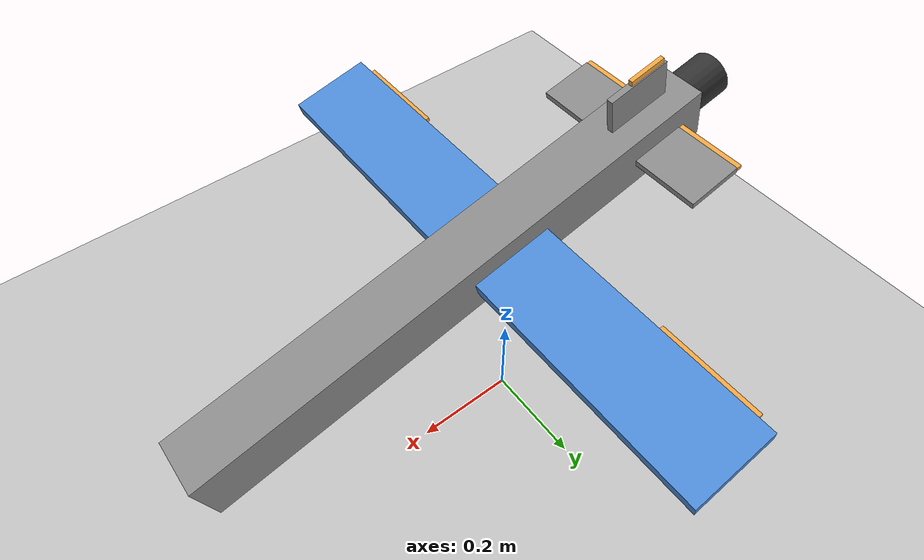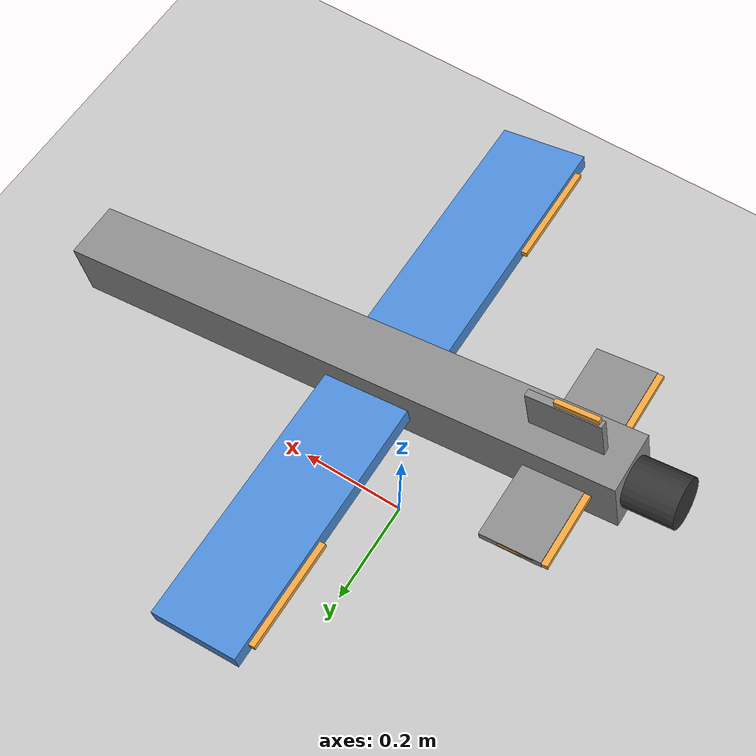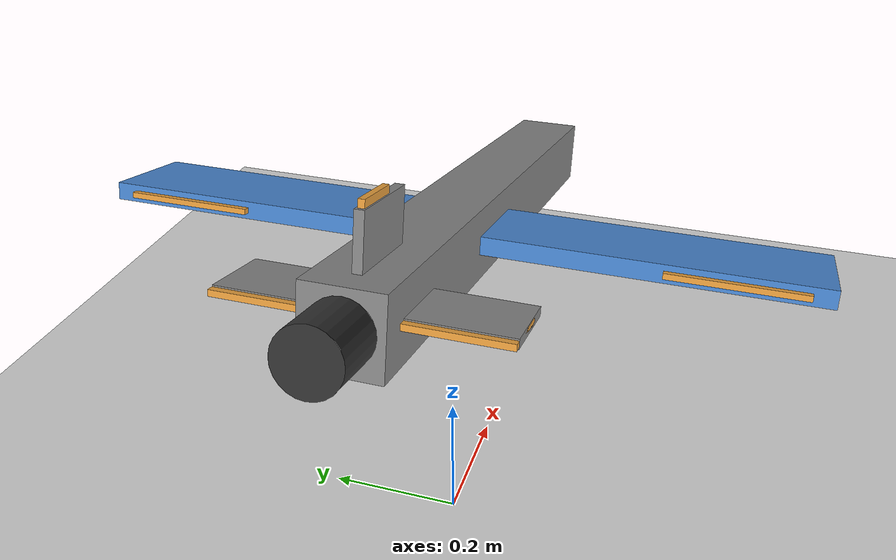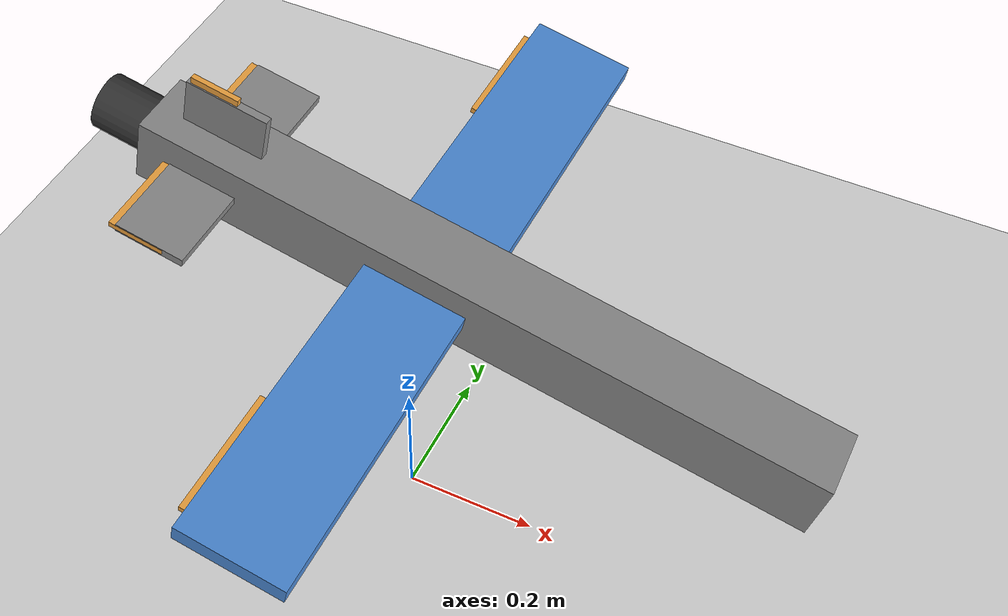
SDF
<?xml version="1.0" ?>
<sdf version="1.7">
<world name="gr008_catapult">

  <!-- Sun lighting -->
  <include>
    <uri>model://sun</uri>
  </include>

  <!-- Ground plane -->
  <include>
    <uri>model://ground_plane</uri>
  </include>

  <!-- Physics: ODE with 500 Hz internal step, 1 ms max step time -->
  <physics type="ode">
    <max_step_size>0.001</max_step_size>
    <real_time_factor>1</real_time_factor>
    <real_time_update_rate>1000</real_time_update_rate>
    <ode>
      <solver>
        <type>quick</type>
        <iters>100</iters>
        <sor>1.3</sor>
      </solver>
      <constraints>
        <cfm>0</cfm>
        <erp>0.2</erp>
        <contact_max_correcting_vel>100</contact_max_correcting_vel>
        <contact_surface_layer>0.001</contact_surface_layer>
      </constraints>
    </ode>
  </physics>

  <!-- Atmosphere -->
  <atmosphere type="adiabatic"/>
  <wind>
    <linear_velocity>0 0 0</linear_velocity>
  </wind>

  <!-- Spherical coordinates: same origin as ArduPilot --home 51.0,0.0,0,352 -->
  <spherical_coordinates>
    <surface_model>EARTH_WGS84</surface_model>
    <latitude_deg>51.0</latitude_deg>
    <longitude_deg>0.0</longitude_deg>
    <elevation>0</elevation>
    <heading_deg>180</heading_deg>
  </spherical_coordinates>

  <!-- GR-008 on catapult rail: 12.3° nose-up, 0.5 m above ground -->
  <!-- pose: x y z roll pitch yaw  (pitch positive = nose up)      -->
  <model name="gr008_plane">
    <include>
      <uri>model://gr008_plane</uri>
    </include>
    <pose>0 0 0.5 0 0.21467 0</pose>
  </model>

</world>
</sdf>

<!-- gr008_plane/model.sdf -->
<sdf version="1.7">
<model name="gr008_plane">
  <static>false</static>

  <link name="base_link">

    <inertial>
      <mass>3.390</mass>
      <pose>0 0 0 0 0 0</pose>
      <inertia>
        <ixx>0.0790</ixx><ixy>0</ixy><ixz>0</ixz>
        <iyy>0.1490</iyy><iyz>0</iyz>
        <izz>0.1990</izz>
      </inertia>
    </inertial>

    <!-- ── Visuals ─────────────────────────────────────────────── -->
    <!-- Fuselage box: 1.0 m × 0.10 m × 0.10 m, center at X=+0.12 m -->
    <visual name="fuselage_vis">
      <pose>0.12 0 0 0 0 0</pose>
      <geometry><box><size>1.00 0.10 0.10</size></box></geometry>
      <material>
        <ambient>0.35 0.35 0.35 1</ambient>
        <diffuse>0.55 0.55 0.55 1</diffuse>
        <specular>0.1 0.1 0.1 1</specular>
      </material>
    </visual>

    <!-- Wing slab: 1.0 m span, 0.15 m chord, 0.025 m thick -->
    <visual name="wings_vis">
      <pose>0.04 0 0 0 0 0</pose>
      <geometry><box><size>0.15 1.00 0.025</size></box></geometry>
      <material>
        <ambient>0.25 0.45 0.75 1</ambient>
        <diffuse>0.30 0.55 0.85 1</diffuse>
      </material>
    </visual>

    <!-- Horizontal stabiliser: 0.35 m span, 0.10 m chord -->
    <visual name="htail_vis">
      <pose>-0.28 0 0 0 0 0</pose>
      <geometry><box><size>0.10 0.35 0.012</size></box></geometry>
      <material><ambient>0.35 0.35 0.35 1</ambient><diffuse>0.55 0.55 0.55 1</diffuse></material>
    </visual>

    <!-- Vertical stabiliser: 0.12 m height, 0.12 m chord -->
    <visual name="vtail_vis">
      <pose>-0.28 0 0.06 0 0 0</pose>
      <geometry><box><size>0.12 0.012 0.12</size></box></geometry>
      <material><ambient>0.35 0.35 0.35 1</ambient><diffuse>0.55 0.55 0.55 1</diffuse></material>
    </visual>

    <!-- Turbine nozzle (visual only) -->
    <visual name="turbine_vis">
      <pose>-0.40 0 0 0 1.5707963 0</pose>
      <geometry><cylinder><radius>0.04</radius><length>0.12</length></cylinder></geometry>
      <material><ambient>0.1 0.1 0.1 1</ambient><diffuse>0.2 0.2 0.2 1</diffuse></material>
    </visual>

    <!-- ── Collisions ──────────────────────────────────────────── -->
    <collision name="fuselage_col">
      <pose>0.12 0 0 0 0 0</pose>
      <geometry><box><size>1.00 0.12 0.12</size></box></geometry>
    </collision>
    <collision name="wings_col">
      <pose>0.04 0 0 0 0 0</pose>
      <geometry><box><size>0.15 1.00 0.025</size></box></geometry>
    </collision>

    <!-- ── IMU (1 kHz, Pixhawk-class noise) ───────────────────── -->
    <sensor name="imu_sensor" type="imu">
      <always_on>true</always_on>
      <update_rate>1000</update_rate>
      <pose>0 0 0 0 0 0</pose>
      <imu>
        <angular_velocity>
          <x><noise type="gaussian"><mean>0</mean><stddev>0.009</stddev><bias_mean>0.0001</bias_mean><bias_stddev>0.0001</bias_stddev></noise></x>
          <y><noise type="gaussian"><mean>0</mean><stddev>0.009</stddev><bias_mean>0.0001</bias_mean><bias_stddev>0.0001</bias_stddev></noise></y>
          <z><noise type="gaussian"><mean>0</mean><stddev>0.009</stddev><bias_mean>0.0001</bias_mean><bias_stddev>0.0001</bias_stddev></noise></z>
        </angular_velocity>
        <linear_acceleration>
          <x><noise type="gaussian"><mean>0</mean><stddev>0.021</stddev><bias_mean>0.05</bias_mean><bias_stddev>0.0075</bias_stddev></noise></x>
          <y><noise type="gaussian"><mean>0</mean><stddev>0.021</stddev><bias_mean>0.05</bias_mean><bias_stddev>0.0075</bias_stddev></noise></y>
          <z><noise type="gaussian"><mean>0</mean><stddev>0.021</stddev><bias_mean>0.05</bias_mean><bias_stddev>0.0075</bias_stddev></noise></z>
        </linear_acceleration>
      </imu>
    </sensor>

    <!-- ── GPS (10 Hz) ────────────────────────────────────────── -->
    <sensor name="gps_sensor" type="gps">
      <always_on>true</always_on>
      <update_rate>10</update_rate>
      <!-- GPS puck: ~0.55 m from nose, left of centre (pitot is nose-left) -->
      <pose>0.07 -0.02 0.05 0 0 0</pose>
      <gps>
        <position_sensing>
          <horizontal>
            <noise type="gaussian"><mean>0</mean><stddev>0.5</stddev></noise>
          </horizontal>
          <vertical>
            <noise type="gaussian"><mean>0</mean><stddev>1.0</stddev></noise>
          </vertical>
        </position_sensing>
        <velocity_sensing>
          <horizontal>
            <noise type="gaussian"><mean>0</mean><stddev>0.1</stddev></noise>
          </horizontal>
          <vertical>
            <noise type="gaussian"><mean>0</mean><stddev>0.1</stddev></noise>
          </vertical>
        </velocity_sensing>
      </gps>
    </sensor>

  </link><!-- base_link -->

  <link name="left_aileron">
    <pose>-0.02 0.38 0 0 0 0</pose>
    <inertial>
      <mass>0.025</mass>
      <inertia>
        <ixx>5.0e-5</ixx><ixy>0</ixy><ixz>0</ixz>
        <iyy>1.0e-5</iyy><iyz>0</iyz>
        <izz>5.0e-5</izz>
      </inertia>
    </inertial>
    <visual name="vis">
      <geometry><box><size>0.05 0.18 0.008</size></box></geometry>
      <material><ambient>0.85 0.55 0.20 1</ambient><diffuse>0.95 0.65 0.25 1</diffuse></material>
    </visual>
    <collision name="col">
      <geometry><box><size>0.05 0.18 0.008</size></box></geometry>
    </collision>
  </link>

  <joint name="left_aileron_joint" type="revolute">
    <parent>base_link</parent>
    <child>left_aileron</child>
    <axis>
      <xyz>0 1 0</xyz>
      <use_parent_model_frame>true</use_parent_model_frame>
      <limit><lower>-0.349</lower><upper>0.349</upper><effort>10</effort><velocity>10</velocity></limit>
      <dynamics><damping>0.5</damping><friction>0</friction></dynamics>
    </axis>
  </joint>

  <link name="right_aileron">
    <pose>-0.02 -0.38 0 0 0 0</pose>
    <inertial>
      <mass>0.025</mass>
      <inertia>
        <ixx>5.0e-5</ixx><ixy>0</ixy><ixz>0</ixz>
        <iyy>1.0e-5</iyy><iyz>0</iyz>
        <izz>5.0e-5</izz>
      </inertia>
    </inertial>
    <visual name="vis">
      <geometry><box><size>0.05 0.18 0.008</size></box></geometry>
      <material><ambient>0.85 0.55 0.20 1</ambient><diffuse>0.95 0.65 0.25 1</diffuse></material>
    </visual>
    <collision name="col">
      <geometry><box><size>0.05 0.18 0.008</size></box></geometry>
    </collision>
  </link>

  <joint name="right_aileron_joint" type="revolute">
    <parent>base_link</parent>
    <child>right_aileron</child>
    <axis>
      <xyz>0 1 0</xyz>
      <use_parent_model_frame>true</use_parent_model_frame>
      <limit><lower>-0.349</lower><upper>0.349</upper><effort>10</effort><velocity>10</velocity></limit>
      <dynamics><damping>0.5</damping><friction>0</friction></dynamics>
    </axis>
  </joint>

  <link name="elevator">
    <pose>-0.30 0 0 0 0 0</pose>
    <inertial>
      <mass>0.025</mass>
      <inertia>
        <ixx>3.0e-4</ixx><ixy>0</ixy><ixz>0</ixz>
        <iyy>1.5e-5</iyy><iyz>0</iyz>
        <izz>3.0e-4</izz>
      </inertia>
    </inertial>
    <visual name="vis">
      <geometry><box><size>0.08 0.35 0.008</size></box></geometry>
      <material><ambient>0.85 0.55 0.20 1</ambient><diffuse>0.95 0.65 0.25 1</diffuse></material>
    </visual>
    <collision name="col">
      <geometry><box><size>0.08 0.35 0.008</size></box></geometry>
    </collision>
  </link>

  <joint name="elevator_joint" type="revolute">
    <parent>base_link</parent>
    <child>elevator</child>
    <axis>
      <xyz>0 1 0</xyz>
      <use_parent_model_frame>true</use_parent_model_frame>
      <limit><lower>-0.436</lower><upper>0.436</upper><effort>10</effort><velocity>10</velocity></limit>
      <dynamics><damping>0.5</damping><friction>0</friction></dynamics>
    </axis>
  </joint>

  <link name="rudder">
    <pose>-0.30 0 0.07 0 0 0</pose>
    <inertial>
      <mass>0.015</mass>
      <inertia>
        <ixx>1.0e-5</ixx><ixy>0</ixy><ixz>0</ixz>
        <iyy>8.0e-5</iyy><iyz>0</iyz>
        <izz>8.0e-5</izz>
      </inertia>
    </inertial>
    <visual name="vis">
      <geometry><box><size>0.07 0.008 0.12</size></box></geometry>
      <material><ambient>0.85 0.55 0.20 1</ambient><diffuse>0.95 0.65 0.25 1</diffuse></material>
    </visual>
    <collision name="col">
      <geometry><box><size>0.07 0.008 0.12</size></box></geometry>
    </collision>
  </link>

  <joint name="rudder_joint" type="revolute">
    <parent>base_link</parent>
    <child>rudder</child>
    <axis>
      <xyz>0 0 1</xyz>
      <use_parent_model_frame>true</use_parent_model_frame>
      <limit><lower>-0.524</lower><upper>0.524</upper><effort>10</effort><velocity>10</velocity></limit>
      <dynamics><damping>0.3</damping><friction>0</friction></dynamics>
    </axis>
  </joint>

  <link name="thrust_link">
    <pose>-0.35 0 0 0 0 0</pose>
    <inertial>
      <mass>0.001</mass>
      <inertia>
        <ixx>1.0e-7</ixx><ixy>0</ixy><ixz>0</ixz>
        <iyy>1.0e-7</iyy><iyz>0</iyz>
        <izz>1.0e-7</izz>
      </inertia>
    </inertial>
  </link>

  <joint name="thrust_joint" type="prismatic">
    <parent>base_link</parent>
    <child>thrust_link</child>
    <axis>
      <xyz>1 0 0</xyz>
      <use_parent_model_frame>true</use_parent_model_frame>
      <limit>
        <lower>0</lower>
        <upper>0.002</upper>
        <effort>100</effort>
        <velocity>0.01</velocity>
      </limit>
      <!-- High damping keeps link stationary; force still transfers to parent -->
      <dynamics><damping>5000</damping><friction>0</friction></dynamics>
    </axis>
  </joint>

  <plugin name="left_wing_ld" filename="libLiftDragPlugin.so">
    <a0>0.05</a0>
    <cla>4.752</cla>
    <cda>0.06</cda>
    <cma>0.00</cma>
    <alpha_stall>0.2618</alpha_stall>
    <cla_stall>-3.85</cla_stall>
    <cda_stall>1.0</cda_stall>
    <cma_stall>0.0</cma_stall>
    <cp>0.05 0.25 0</cp>
    <area>0.075</area>
    <air_density>1.2041</air_density>
    <forward>1 0 0</forward>
    <upward>0 0 1</upward>
    <link_name>base_link</link_name>
    <!-- Aileron deflection modifies effective AoA on this panel -->
    <control_joint_name>left_aileron_joint</control_joint_name>
    <control_joint_rad_to_cl>2.0</control_joint_rad_to_cl>
  </plugin>

  <plugin name="right_wing_ld" filename="libLiftDragPlugin.so">
    <a0>0.05</a0>
    <cla>4.752</cla>
    <cda>0.06</cda>
    <cma>0.00</cma>
    <alpha_stall>0.2618</alpha_stall>
    <cla_stall>-3.85</cla_stall>
    <cda_stall>1.0</cda_stall>
    <cma_stall>0.0</cma_stall>
    <cp>0.05 -0.25 0</cp>
    <area>0.075</area>
    <air_density>1.2041</air_density>
    <forward>1 0 0</forward>
    <upward>0 0 1</upward>
    <link_name>base_link</link_name>
    <control_joint_name>right_aileron_joint</control_joint_name>
    <control_joint_rad_to_cl>2.0</control_joint_rad_to_cl>
  </plugin>

  <!-- Elevator / horizontal tail -->
  <plugin name="elevator_ld" filename="libLiftDragPlugin.so">
    <a0>0.00</a0>
    <cla>3.50</cla>
    <cda>0.04</cda>
    <cma>-1.50</cma>
    <alpha_stall>0.3490</alpha_stall>
    <cla_stall>-3.00</cla_stall>
    <cda_stall>1.0</cda_stall>
    <cma_stall>0.0</cma_stall>
    <cp>-0.30 0 0</cp>
    <area>0.035</area>
    <air_density>1.2041</air_density>
    <forward>1 0 0</forward>
    <upward>0 0 1</upward>
    <link_name>base_link</link_name>
    <control_joint_name>elevator_joint</control_joint_name>
    <control_joint_rad_to_cl>2.0</control_joint_rad_to_cl>
  </plugin>

  <!-- Rudder / vertical tail (lift = side force, upward = body-Y) -->
  <plugin name="rudder_ld" filename="libLiftDragPlugin.so">
    <a0>0.00</a0>
    <cla>3.00</cla>
    <cda>0.03</cda>
    <cma>0.00</cma>
    <alpha_stall>0.3490</alpha_stall>
    <cla_stall>-2.50</cla_stall>
    <cda_stall>1.0</cda_stall>
    <cma_stall>0.0</cma_stall>
    <cp>-0.30 0 0.05</cp>
    <area>0.022</area>
    <air_density>1.2041</air_density>
    <forward>1 0 0</forward>
    <upward>0 1 0</upward>
    <link_name>base_link</link_name>
    <control_joint_name>rudder_joint</control_joint_name>
    <control_joint_rad_to_cl>2.0</control_joint_rad_to_cl>
  </plugin>

  <plugin name="arduplane_plugin" filename="libArduPilotPlugin.so">

    <fdm_addr>127.0.0.1</fdm_addr>
    <fdm_port_in>9002</fdm_port_in>
    <fdm_port_out>9003</fdm_port_out>

    <!-- Gazebo body frame → ArduPilot body frame (180° about X) -->
    <modelXYZToAirplaneXForwardZDown>0 0 0 3.14159265 0 0</modelXYZToAirplaneXForwardZDown>
    <!-- Gazebo ENU world → ArduPilot NED world -->
    <gazeboXYZToNED>0 0 0 3.14159265 0 1.57079633</gazeboXYZToNED>

    <imuName>base_link::imu_sensor</imuName>
    <connectionTimeoutMaxCount>5</connectionTimeoutMaxCount>

    <!-- ch 0: left aileron — positive deflection = trailing edge up -->
    <control channel="0">
      <type>POSITION</type>
      <offset>-0.5</offset>
      <p_gain>10</p_gain>
      <i_gain>0</i_gain>
      <d_gain>0</d_gain>
      <i_max>0</i_max>
      <i_min>0</i_min>
      <cmd_max>0.349</cmd_max>
      <cmd_min>-0.349</cmd_min>
      <jointName>left_aileron_joint</jointName>
      <multiplier>0.698</multiplier>
    </control>

    <!-- ch 1: right aileron — negative multiplier for opposite deflection -->
    <control channel="1">
      <type>POSITION</type>
      <offset>-0.5</offset>
      <p_gain>10</p_gain>
      <i_gain>0</i_gain>
      <d_gain>0</d_gain>
      <i_max>0</i_max>
      <i_min>0</i_min>
      <cmd_max>0.349</cmd_max>
      <cmd_min>-0.349</cmd_min>
      <jointName>right_aileron_joint</jointName>
      <multiplier>-0.698</multiplier>
    </control>

    <!-- ch 2: turbine throttle → thrust force 0 .. 80 N along +X -->
    <!-- idle RPM ≈ PWM 1100; cruise (140 k) ≈ 64 N ≈ PWM 1800;   -->
    <!-- max (156 k) ≈ 80 N ≈ PWM 2000                             -->
    <control channel="2">
      <type>EFFORT</type>
      <offset>0</offset>
      <p_gain>0</p_gain>
      <i_gain>0</i_gain>
      <d_gain>0</d_gain>
      <i_max>0</i_max>
      <i_min>0</i_min>
      <cmd_max>80</cmd_max>
      <cmd_min>0</cmd_min>
      <jointName>thrust_joint</jointName>
      <multiplier>80</multiplier>
    </control>

    <!-- ch 3: elevator — positive = nose-down (trailing edge down) -->
    <control channel="3">
      <type>POSITION</type>
      <offset>-0.5</offset>
      <p_gain>10</p_gain>
      <i_gain>0</i_gain>
      <d_gain>0</d_gain>
      <i_max>0</i_max>
      <i_min>0</i_min>
      <cmd_max>0.436</cmd_max>
      <cmd_min>-0.436</cmd_min>
      <jointName>elevator_joint</jointName>
      <multiplier>0.872</multiplier>
    </control>

    <!-- ch 4: rudder — positive = nose-right (trailing edge right) -->
    <control channel="4">
      <type>POSITION</type>
      <offset>-0.5</offset>
      <p_gain>10</p_gain>
      <i_gain>0</i_gain>
      <d_gain>0</d_gain>
      <i_max>0</i_max>
      <i_min>0</i_min>
      <cmd_max>0.524</cmd_max>
      <cmd_min>-0.524</cmd_min>
      <jointName>rudder_joint</jointName>
      <multiplier>1.047</multiplier>
    </control>

  </plugin>

</model>
</sdf>
